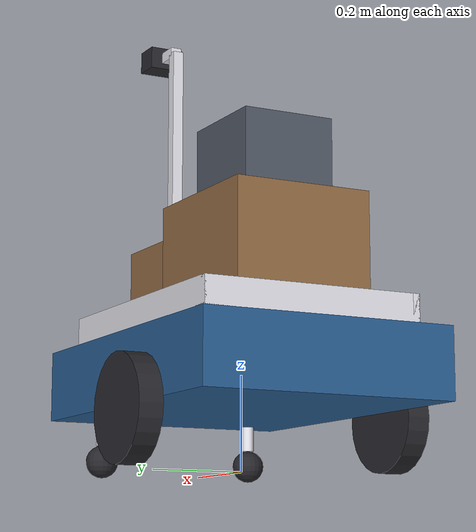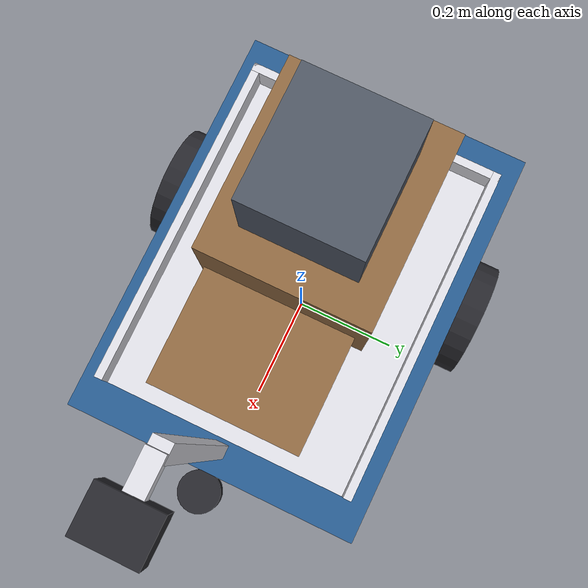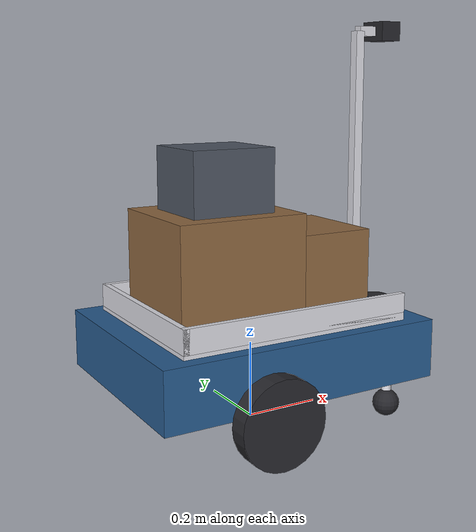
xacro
<?xml version="1.0"?>
<robot name="porter" xmlns:xacro="http://www.ros.org/wiki/xacro">

  <xacro:include filename="$(find porter_description)/urdf/chassis.xacro"/>

  <xacro:include filename="$(find porter_description)/urdf/lidar.xacro"/>
  <xacro:include filename="$(find porter_description)/urdf/camera.xacro"/>
  <xacro:include filename="$(find porter_description)/urdf/imu.xacro"/>

</robot>

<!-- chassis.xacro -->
<robot xmlns:xacro="http://www.ros.org/wiki/xacro">

  <!-- ============================ Dimensions ============================ -->
  <xacro:property name="chassis_length" value="0.75"/>
  <xacro:property name="chassis_width"  value="0.55"/>
  <xacro:property name="chassis_height" value="0.15"/>
  <xacro:property name="chassis_mass"   value="22.0"/>

  <xacro:property name="wheel_radius"   value="0.11"/>
  <xacro:property name="wheel_width"    value="0.05"/>
  <xacro:property name="wheel_mass"     value="2.2"/>

  <xacro:property name="caster_radius"  value="0.035"/>
  <xacro:property name="caster_mass"    value="0.3"/>

  <xacro:property name="caster_x"       value="0.31"/>
  <xacro:property name="caster_dy"      value="0.18"/>   <!-- +-Y of the pair -->

  <xacro:property name="wheel_x"        value="-0.10"/>

  <!-- Chassis centre height. The wheel axle must sit exactly one wheel radius
       above the ground, so the wheel joints are lowered by this difference. -->
  <xacro:property name="base_height"    value="0.20"/>
  <xacro:property name="wheel_dz"       value="${wheel_radius - base_height}"/>
  <xacro:property name="caster_dz"      value="${caster_radius - base_height}"/>

  <!-- Half the chassis width plus half a wheel: the wheels sit just outside
       the body. This value feeds the DiffDrive plugin as wheel_separation. -->
  <xacro:property name="wheel_dy"       value="${chassis_width/2 + wheel_width/2}"/>
  <xacro:property name="wheel_separation" value="${2*wheel_dy}"/>

  <xacro:property name="sensor_x"       value="0.41"/>
  <xacro:property name="mast_post_x"    value="0.33"/>
  <xacro:property name="lidar_height"   value="0.25"/>
  <xacro:property name="camera_height"  value="1.00"/>

  <xacro:property name="platform_length" value="0.62"/>
  <xacro:property name="platform_width"  value="0.48"/>
  <xacro:property name="platform_thick"  value="0.02"/>
  <xacro:property name="rail_height"     value="0.06"/>
  <xacro:property name="rail_thick"      value="0.015"/>

  <xacro:property name="crate_a" value="0.34 0.30 0.26"/>   <!-- lower crate -->
  <xacro:property name="crate_b" value="0.22 0.20 0.16"/>   <!-- stacked box -->
  <xacro:property name="crate_c" value="0.20 0.26 0.20"/>   <!-- parcel beside -->

  <!-- ============================= Materials ============================ -->
  <material name="porter_body">  <color rgba="0.15 0.35 0.55 1"/></material>
  <material name="porter_dark">  <color rgba="0.15 0.15 0.17 1"/></material>
  <material name="porter_accent"><color rgba="0.85 0.85 0.88 1"/></material>
  <material name="porter_crate"> <color rgba="0.55 0.40 0.25 1"/></material>
  <material name="porter_parcel"><color rgba="0.30 0.33 0.38 1"/></material>

  <!-- ============================== Macros ============================== -->
  <!-- Solid box inertia about its own centre. -->
  <xacro:macro name="box_inertia" params="m x y z">
    <inertial>
      <mass value="${m}"/>
      <inertia ixx="${m*(y*y+z*z)/12}" ixy="0" ixz="0"
               iyy="${m*(x*x+z*z)/12}" iyz="0"
               izz="${m*(x*x+y*y)/12}"/>
    </inertial>
  </xacro:macro>

  <!-- Solid sphere inertia about its own centre. -->
  <xacro:macro name="sphere_inertia" params="m r">
    <inertial>
      <mass value="${m}"/>
      <inertia ixx="${2*m*r*r/5}" ixy="0" ixz="0"
               iyy="${2*m*r*r/5}" iyz="0"
               izz="${2*m*r*r/5}"/>
    </inertial>
  </xacro:macro>

  <xacro:macro name="drive_wheel" params="prefix side">
    <link name="${prefix}_wheel_link">
      <visual>
        <origin xyz="0 0 0" rpy="${pi/2} 0 0"/>
        <geometry><cylinder radius="${wheel_radius}" length="${wheel_width}"/></geometry>
        <material name="porter_dark"/>
      </visual>
      <collision>
        <origin xyz="0 0 0" rpy="${pi/2} 0 0"/>
        <geometry><cylinder radius="${wheel_radius}" length="${wheel_width}"/></geometry>
      </collision>
      <inertial>
        <origin xyz="0 0 0" rpy="${pi/2} 0 0"/>
        <mass value="${wheel_mass}"/>
        <inertia ixx="${wheel_mass*(3*wheel_radius*wheel_radius + wheel_width*wheel_width)/12}" ixy="0" ixz="0"
                 iyy="${wheel_mass*(3*wheel_radius*wheel_radius + wheel_width*wheel_width)/12}" iyz="0"
                 izz="${wheel_mass*wheel_radius*wheel_radius/2}"/>
      </inertial>
    </link>

    <joint name="${prefix}_wheel_joint" type="continuous">
      <parent link="base_link"/>
      <child  link="${prefix}_wheel_link"/>
      <origin xyz="${wheel_x} ${side*wheel_dy} ${wheel_dz}" rpy="0 0 0"/>
      <axis xyz="0 1 0"/>
    </joint>

    <!-- Grip: the wheels must not slip, otherwise odometry drifts badly. -->
    <gazebo reference="${prefix}_wheel_link">
      <mu1>1.2</mu1>
      <mu2>1.2</mu2>
    </gazebo>
  </xacro:macro>

  <xacro:property name="caster_strut_radius" value="0.013"/>
  <!-- Leg from the chassis underside down to the top of the ball. -->
  <xacro:property name="caster_strut_length"
                  value="${base_height - chassis_height/2 - 2*caster_radius}"/>

  <xacro:macro name="caster" params="prefix side">
    <link name="${prefix}_caster_link">
      <visual>
        <geometry><sphere radius="${caster_radius}"/></geometry>
        <material name="porter_dark"/>
      </visual>
      <!-- Thin leg, drawn upwards from the ball to the chassis. -->
      <visual>
        <origin xyz="0 0 ${caster_radius + caster_strut_length/2}" rpy="0 0 0"/>
        <geometry>
          <cylinder radius="${caster_strut_radius}" length="${caster_strut_length}"/>
        </geometry>
        <material name="porter_accent"/>
      </visual>
      <collision>
        <geometry><sphere radius="${caster_radius}"/></geometry>
      </collision>
      <xacro:sphere_inertia m="${caster_mass}" r="${caster_radius}"/>
    </link>

    <joint name="${prefix}_caster_joint" type="fixed">
      <parent link="base_link"/>
      <child  link="${prefix}_caster_link"/>
      <origin xyz="${caster_x} ${side*caster_dy} ${caster_dz}" rpy="0 0 0"/>
    </joint>

    <gazebo reference="${prefix}_caster_link">
      <mu1>0.0</mu1>
      <mu2>0.0</mu2>
    </gazebo>
  </xacro:macro>

  <!-- ============================== Links =============================== -->
  <!-- Massless reference frame on the ground, directly below base_link. -->
  <link name="base_footprint"/>

  <joint name="base_joint" type="fixed">
    <parent link="base_footprint"/>
    <child  link="base_link"/>
    <origin xyz="0 0 ${base_height}" rpy="0 0 0"/>
  </joint>

  <link name="base_link">
    <visual>
      <geometry><box size="${chassis_length} ${chassis_width} ${chassis_height}"/></geometry>
      <material name="porter_body"/>
    </visual>
    <collision>
      <geometry><box size="${chassis_length} ${chassis_width} ${chassis_height}"/></geometry>
    </collision>
    <xacro:box_inertia m="${chassis_mass}" x="${chassis_length}"
                       y="${chassis_width}" z="${chassis_height}"/>
  </link>

  <link name="cargo_deck_link">
    <visual>
      <geometry><box size="${platform_length} ${platform_width} ${platform_thick}"/></geometry>
      <material name="porter_accent"/>
    </visual>
    <visual>
      <origin xyz="0 ${platform_width/2 - rail_thick/2} ${rail_height/2}"/>
      <geometry><box size="${platform_length} ${rail_thick} ${rail_height}"/></geometry>
      <material name="porter_accent"/>
    </visual>
    <visual>
      <origin xyz="0 ${-platform_width/2 + rail_thick/2} ${rail_height/2}"/>
      <geometry><box size="${platform_length} ${rail_thick} ${rail_height}"/></geometry>
      <material name="porter_accent"/>
    </visual>
    <visual>
      <origin xyz="${-platform_length/2 + rail_thick/2} 0 ${rail_height/2}"/>
      <geometry><box size="${rail_thick} ${platform_width} ${rail_height}"/></geometry>
      <material name="porter_accent"/>
    </visual>
    <!-- Cargo: a crate with a box stacked on it, and a parcel alongside.
         Each sits on the deck plate, so its centre is half its own height
         above the top face. -->
    <visual>
      <origin xyz="-0.10 0 ${platform_thick/2 + 0.13}"/>
      <geometry><box size="${crate_a}"/></geometry>
      <material name="porter_crate"/>
    </visual>
    <visual>
      <origin xyz="-0.10 0 ${platform_thick/2 + 0.26 + 0.08}"/>
      <geometry><box size="${crate_b}"/></geometry>
      <material name="porter_parcel"/>
    </visual>
    <visual>
      <origin xyz="0.18 0 ${platform_thick/2 + 0.10}"/>
      <geometry><box size="${crate_c}"/></geometry>
      <material name="porter_crate"/>
    </visual>

    <xacro:box_inertia m="2.0" x="${platform_length}"
                       y="${platform_width}" z="${platform_thick}"/>
  </link>

  <joint name="cargo_deck_joint" type="fixed">
    <parent link="base_link"/>
    <child  link="cargo_deck_link"/>
    <origin xyz="0 0 ${chassis_height/2 + platform_thick/2}" rpy="0 0 0"/>
  </joint>

  <xacro:drive_wheel prefix="left"  side="1"/>
  <xacro:drive_wheel prefix="right" side="-1"/>
  <xacro:caster      prefix="front_left"  side="1"/>
  <xacro:caster      prefix="front_right" side="-1"/>

  <!-- ============================= Gazebo =============================== -->
  <gazebo>
    <plugin filename="gz-sim-diff-drive-system"
            name="gz::sim::systems::DiffDrive">
      <left_joint>left_wheel_joint</left_joint>
      <right_joint>right_wheel_joint</right_joint>
      <wheel_separation>${wheel_separation}</wheel_separation>
      <wheel_radius>${wheel_radius}</wheel_radius>
      <topic>cmd_vel</topic>
      <odom_topic>odom</odom_topic>
      <tf_topic>/tf</tf_topic>
      <frame_id>odom</frame_id>
      <child_frame_id>base_footprint</child_frame_id>
      <odom_publish_frequency>50</odom_publish_frequency>
      <max_linear_acceleration>1.5</max_linear_acceleration>
    </plugin>

    <!-- Feeds /joint_states so robot_state_publisher can turn the wheels
         in RViz. Without it the wheels stay frozen in the visualisation. -->
    <plugin filename="gz-sim-joint-state-publisher-system"
            name="gz::sim::systems::JointStatePublisher">
      <topic>joint_states</topic>
      <!-- Without a rate limit this publishes at the physics step rate
           (~1000 Hz), which is far more than RViz needs. -->
      <update_rate>50</update_rate>
    </plugin>
  </gazebo>

</robot>

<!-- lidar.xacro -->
<!-- 360 degree LiDAR on a short post at the front of the chassis.
     Shares sensor_mast_x with the camera so that a bearing measured in the
     image can be converted directly into a scan ray index. -->
<robot xmlns:xacro="http://www.ros.org/wiki/xacro">

  <xacro:property name="lidar_radius" value="0.038"/>
  <xacro:property name="lidar_length" value="0.045"/>
  <xacro:property name="lidar_mass"   value="0.17"/>

  <link name="lidar_link">
    <!-- Sensor body. Its origin is the measurement origin, so the scan
         ranges are measured from exactly here. -->
    <visual>
      <geometry><cylinder radius="${lidar_radius}" length="${lidar_length}"/></geometry>
      <material name="porter_dark"/>
    </visual>
    <collision>
      <geometry><cylinder radius="${lidar_radius}" length="${lidar_length}"/></geometry>
    </collision>
    <inertial>
      <mass value="${lidar_mass}"/>
      <inertia ixx="${lidar_mass*(3*lidar_radius*lidar_radius + lidar_length*lidar_length)/12}" ixy="0" ixz="0"
               iyy="${lidar_mass*(3*lidar_radius*lidar_radius + lidar_length*lidar_length)/12}" iyz="0"
               izz="${lidar_mass*lidar_radius*lidar_radius/2}"/>
    </inertial>
  </link>

  <joint name="lidar_joint" type="fixed">
    <parent link="base_link"/>
    <child  link="lidar_link"/>
    <origin xyz="${sensor_x} 0 ${lidar_height - base_height}" rpy="0 0 0"/>
  </joint>

  <gazebo reference="lidar_link">
    <sensor name="lidar" type="gpu_lidar">
      <topic>scan</topic>
      <update_rate>10</update_rate>
      <always_on>true</always_on>
      <visualize>true</visualize>
      <!-- Stamped into LaserScan.header.frame_id; RViz resolves the scan
           against the TF tree using this name. -->
      <frame_id>lidar_link</frame_id>
      <lidar>
        <scan>
          <horizontal>
            <samples>181</samples>
            <resolution>1</resolution>
            <min_angle>${-pi/2}</min_angle>
            <max_angle>${ pi/2}</max_angle>
          </horizontal>
        </scan>
        <range>
          <min>0.10</min>
          <max>10.0</max>
          <resolution>0.01</resolution>
        </range>
        <!-- A little noise keeps the controller honest; a perfectly clean
             scan hides filtering bugs that would show up on real hardware. -->
        <noise>
          <type>gaussian</type>
          <mean>0.0</mean>
          <stddev>0.01</stddev>
        </noise>
      </lidar>
    </sensor>
  </gazebo>

</robot>

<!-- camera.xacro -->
<!-- Fixed forward-facing RGB camera. Placement comes from chassis.xacro so
     the optical centre and the LiDAR share the same vertical axis. -->
<robot xmlns:xacro="http://www.ros.org/wiki/xacro">

  <xacro:property name="camera_post_width" value="0.025"/>
  <xacro:property name="camera_post_height"
                  value="${camera_height - base_height - chassis_height/2}"/>
  <xacro:property name="camera_arm_length" value="${sensor_x - mast_post_x}"/>
  <xacro:property name="camera_body_length" value="0.06"/>
  <xacro:property name="camera_body_width" value="0.08"/>
  <xacro:property name="camera_body_height" value="0.05"/>

  <!-- The post starts at the chassis top and stays behind the scan origin. -->
  <link name="camera_mast_link">
    <visual>
      <geometry>
        <box size="${camera_post_width} ${camera_post_width} ${camera_post_height}"/>
      </geometry>
      <material name="porter_accent"/>
    </visual>
    <collision>
      <geometry>
        <box size="${camera_post_width} ${camera_post_width} ${camera_post_height}"/>
      </geometry>
    </collision>
    <xacro:box_inertia m="0.45" x="${camera_post_width}"
                       y="${camera_post_width}" z="${camera_post_height}"/>
  </link>
  <joint name="camera_mast_joint" type="fixed">
    <parent link="base_link"/>
    <child link="camera_mast_link"/>
    <origin xyz="${mast_post_x} 0 ${chassis_height/2 + camera_post_height/2}"/>
  </joint>

  <!-- Short forward arm; camera_link remains a direct child of base_link. -->
  <link name="camera_arm_link">
    <visual>
      <geometry>
        <box size="${camera_arm_length} ${camera_post_width} ${camera_post_width}"/>
      </geometry>
      <material name="porter_accent"/>
    </visual>
    <collision>
      <geometry>
        <box size="${camera_arm_length} ${camera_post_width} ${camera_post_width}"/>
      </geometry>
    </collision>
    <xacro:box_inertia m="0.05" x="${camera_arm_length}"
                       y="${camera_post_width}" z="${camera_post_width}"/>
  </link>
  <joint name="camera_arm_joint" type="fixed">
    <parent link="base_link"/>
    <child link="camera_arm_link"/>
    <origin xyz="${(mast_post_x + sensor_x)/2} 0 ${camera_height - base_height}"/>
  </joint>

  <link name="camera_link">
    <visual>
      <geometry>
        <box size="${camera_body_length} ${camera_body_width} ${camera_body_height}"/>
      </geometry>
      <material name="porter_dark"/>
    </visual>
    <collision>
      <geometry>
        <box size="${camera_body_length} ${camera_body_width} ${camera_body_height}"/>
      </geometry>
    </collision>
    <xacro:box_inertia m="0.1" x="${camera_body_length}"
                       y="${camera_body_width}" z="${camera_body_height}"/>
  </link>
  <joint name="camera_joint" type="fixed">
    <parent link="base_link"/>
    <child link="camera_link"/>
    <origin xyz="${sensor_x} 0 ${camera_height - base_height}"/>
  </joint>

  <!-- ROS optical convention: +Z forward, +X right, +Y down. This empty
       link is a TF frame, not an additional physical body. -->
  <link name="camera_optical_link"/>
  <joint name="camera_optical_joint" type="fixed">
    <parent link="camera_link"/>
    <child link="camera_optical_link"/>
    <origin xyz="0 0 0" rpy="${-pi/2} 0 ${-pi/2}"/>
  </joint>

  <gazebo reference="camera_link">
    <!-- Gazebo cameras look along local +X. The sensor pose stays aligned
         with camera_link; only the ROS message frame uses optical axes. -->
    <sensor name="camera" type="camera">
      <topic>/camera/image_raw</topic>
      <frame_id>camera_optical_link</frame_id>
      <update_rate>30</update_rate>
      <always_on>true</always_on>
      <visualize>true</visualize>
      <camera>
        <horizontal_fov>${80*pi/180}</horizontal_fov>
        <image>
          <width>640</width>
          <height>480</height>
          <format>R8G8B8</format>
        </image>
        <clip>
          <near>0.05</near>
          <far>30.0</far>
        </clip>
        <camera_info_topic>/camera/camera_info</camera_info_topic>
      </camera>
    </sensor>
  </gazebo>

</robot>

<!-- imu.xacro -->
<robot xmlns:xacro="http://www.ros.org/wiki/xacro">

  <xacro:property name="imu_size" value="0.03"/>
  <xacro:property name="imu_mass" value="0.02"/>

  <link name="imu_link">
    <visual>
      <geometry><box size="${imu_size} ${imu_size} ${imu_size/3}"/></geometry>
      <material name="porter_accent"/>
    </visual>
    <xacro:box_inertia m="${imu_mass}" x="${imu_size}"
                       y="${imu_size}" z="${imu_size/3}"/>
  </link>

  <!-- No collision: the board lives inside the chassis and contact with it
       is meaningless. -->
  <joint name="imu_joint" type="fixed">
    <parent link="base_link"/>
    <child  link="imu_link"/>
    <origin xyz="0 0 0" rpy="0 0 0"/>
  </joint>

  <gazebo reference="imu_link">
    <sensor name="imu" type="imu">
      <topic>imu</topic>
      <update_rate>100</update_rate>
      <always_on>true</always_on>
      <frame_id>imu_link</frame_id>
      <imu>
        <!-- Noise figures are in the range of a consumer MEMS unit. A noiseless
             IMU would let the controller trust raw pitch, which would not hold
             on real hardware. -->
        <angular_velocity>
          <x><noise type="gaussian"><mean>0.0</mean><stddev>0.0003</stddev></noise></x>
          <y><noise type="gaussian"><mean>0.0</mean><stddev>0.0003</stddev></noise></y>
          <z><noise type="gaussian"><mean>0.0</mean><stddev>0.0003</stddev></noise></z>
        </angular_velocity>
        <linear_acceleration>
          <x><noise type="gaussian"><mean>0.0</mean><stddev>0.015</stddev></noise></x>
          <y><noise type="gaussian"><mean>0.0</mean><stddev>0.015</stddev></noise></y>
          <z><noise type="gaussian"><mean>0.0</mean><stddev>0.015</stddev></noise></z>
        </linear_acceleration>
      </imu>
    </sensor>
  </gazebo>

</robot>
